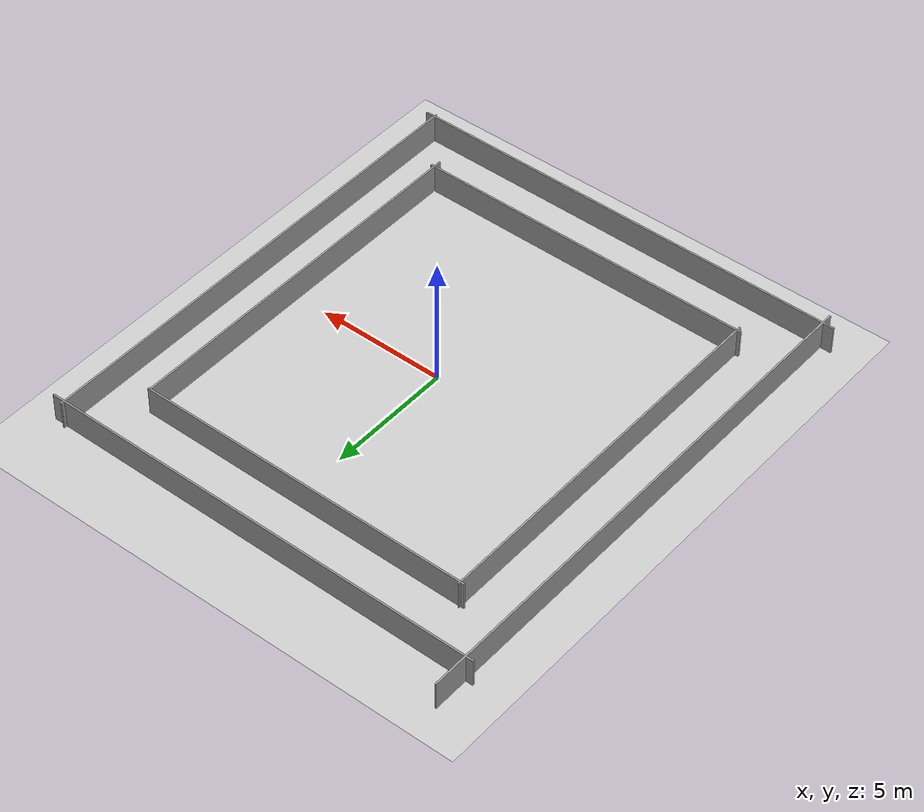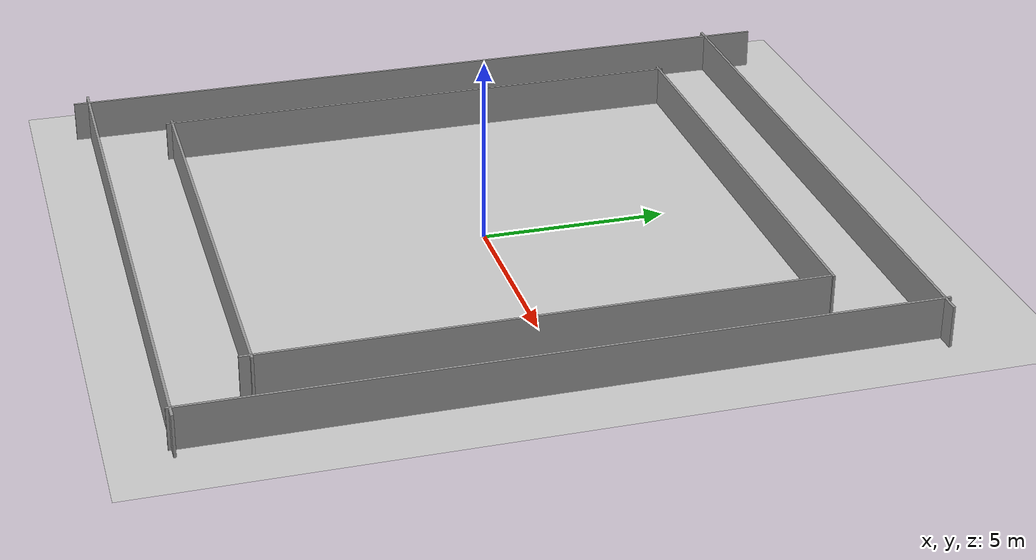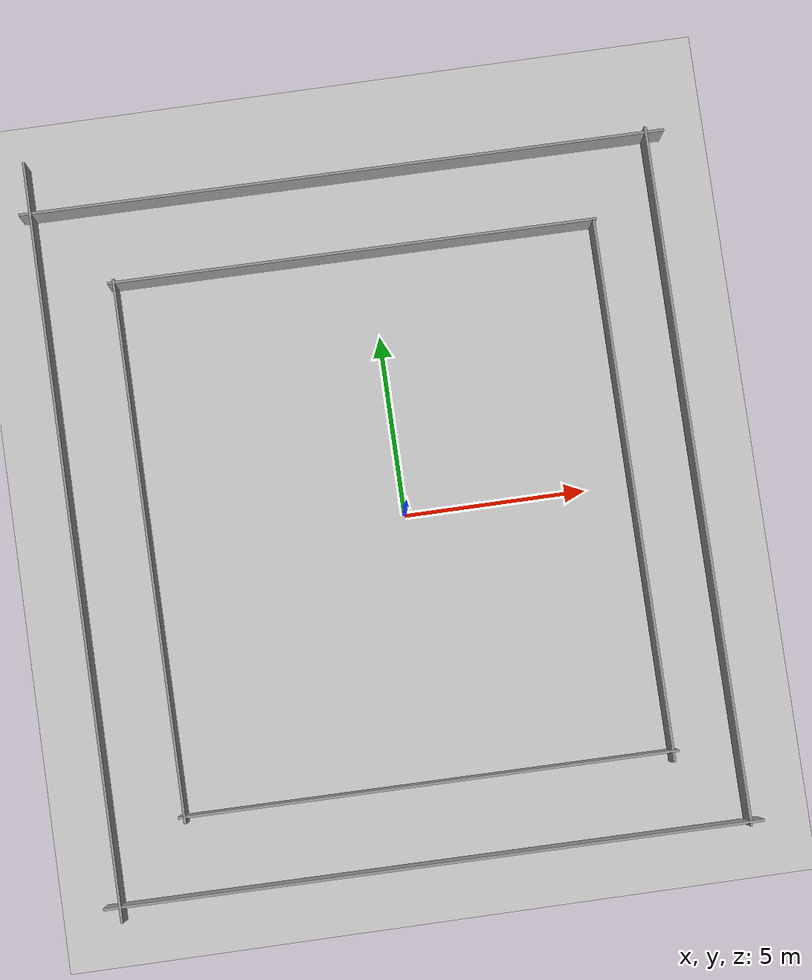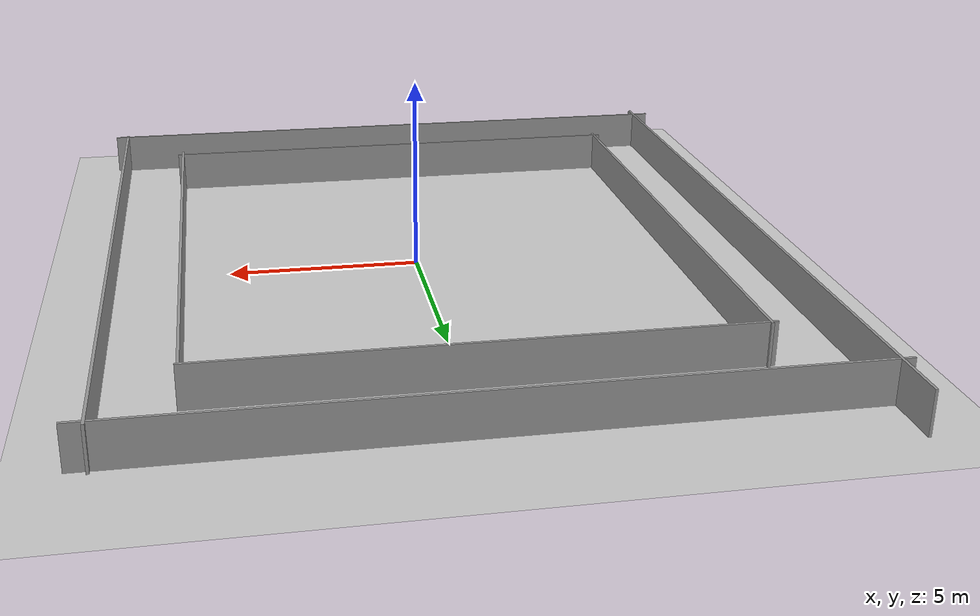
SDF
<sdf version="1.6">
 <world name="default">
  <light name="sun" type="directional">
   <pose>0 0 10 0 -0 0</pose>
   <diffuse>0.8 0.8 0.8 1</diffuse>
   <specular>0.1 0.1 0.1 1</specular>
   <attenuation>
    <range>1000</range>
    <constant>0.9</constant>
    <linear>0.01</linear>
    <quadratic>0.001</quadratic>
   </attenuation>
   <direction>-0.5 0.5 -1</direction>
  </light>
  <model name="ground_plane">
   <static>1</static>
   <link name="link">
    <collision name="collision">
     <geometry><plane><normal>0 0 1</normal><size>100 100</size></plane></geometry>
     <surface><friction><ode><mu>100</mu><mu2>50</mu2></ode></friction></surface>
    </collision>
    <visual name="visual">
     <cast_shadows>0</cast_shadows>
     <geometry><plane><normal>0 0 1</normal><size>100 100</size></plane></geometry>
     <material>
      <script><uri>file://media/materials/scripts/gazebo.material</uri><name>Gazebo/Grey</name></script>
     </material>
    </visual>
   </link>
  </model>
  <gravity>0 0 -9.8</gravity>
  <magnetic_field>6e-06 2.3e-05 -4.2e-05</magnetic_field>
  <atmosphere type="adiabatic"/>
  <physics name="default_physics" default="0" type="ode">
   <max_step_size>0.001</max_step_size>
   <real_time_factor>1</real_time_factor>
   <real_time_update_rate>1000</real_time_update_rate>
  </physics>
  <scene><ambient>0.4 0.4 0.4 1</ambient><background>0.7 0.7 0.7 1</background><shadows>1</shadows></scene>
  <spherical_coordinates>
   <surface_model>EARTH_WGS84</surface_model>
   <latitude_deg>0</latitude_deg>
   <longitude_deg>0</longitude_deg>
   <elevation>0</elevation>
   <heading_deg>0</heading_deg>
  </spherical_coordinates>
  <model name="Untitled">
   <link name="link_0">
    <pose>-8.62546 0.502256 0 0 -0 0</pose>
    <inertial>
     <mass>1.72372</mass>
     <inertia><ixx>62.4485</ixx><ixy>0</ixy><ixz>0</ixz><iyy>0.200224</iyy><iyz>0</iyz><izz>62.2497</izz></inertia>
    </inertial>
    <visual name="visual">
     <geometry><box><size>0.070213 20.8172 1.17853</size></box></geometry>
     <material>
      <lighting>1</lighting>
      <script><uri>file://media/materials/scripts/gazebo.material</uri><name>Gazebo/Grey</name></script>
      <ambient>0.3 0.3 0.3 1</ambient>
      <diffuse>0.7 0.7 0.7 1</diffuse>
      <specular>0.01 0.01 0.01 1</specular>
      <emissive>0 0 0 1</emissive>
     </material>
    </visual>
    <collision name="collision">
     <geometry><box><size>0.070213 20.8172 1.17853</size></box></geometry>
     <surface>
      <friction>
       <ode><mu>1</mu><mu2>1</mu2><fdir1>0 0 0</fdir1><slip1>0</slip1><slip2>0</slip2></ode>
       <torsional>
        <coefficient>1</coefficient>
        <patch_radius>0</patch_radius>
        <surface_radius>0</surface_radius>
        <use_patch_radius>1</use_patch_radius>
        <ode><slip>0</slip></ode>
       </torsional>
      </friction>
      <bounce><restitution_coefficient>0</restitution_coefficient><threshold>1e+06</threshold></bounce>
      <contact>
       <collide_without_contact>0</collide_without_contact>
       <collide_without_contact_bitmask>1</collide_without_contact_bitmask>
       <collide_bitmask>1</collide_bitmask>
       <ode>
        <soft_cfm>0</soft_cfm>
        <soft_erp>0.2</soft_erp>
        <kp>1e+13</kp>
        <kd>1</kd>
        <max_vel>0.01</max_vel>
        <min_depth>0</min_depth>
       </ode>
       <bullet>
        <split_impulse>1</split_impulse>
        <split_impulse_penetration_threshold>-0.01</split_impulse_penetration_threshold>
        <soft_cfm>0</soft_cfm>
        <soft_erp>0.2</soft_erp>
        <kp>1e+13</kp>
        <kd>1</kd>
       </bullet>
      </contact>
     </surface>
    </collision>
   </link>
   <link name="link_0_clone">
    <pose>-6.61056 -0.082572 0 0 -0 0</pose>
    <inertial>
     <mass>1.23331</mass>
     <inertia><ixx>22.9405</ixx><ixy>0</ixy><ixz>0</ixz><iyy>0.143255</iyy><iyz>0</iyz><izz>22.7983</izz></inertia>
    </inertial>
    <visual name="visual">
     <geometry><box><size>0.070213 14.8936 1.17852</size></box></geometry>
     <material>
      <lighting>1</lighting>
      <script><uri>file://media/materials/scripts/gazebo.material</uri><name>Gazebo/Grey</name></script>
      <ambient>0.3 0.3 0.3 1</ambient>
      <diffuse>0.7 0.7 0.7 1</diffuse>
      <specular>0.01 0.01 0.01 1</specular>
      <emissive>0 0 0 1</emissive>
      <shader type="pixel"/>
     </material>
    </visual>
    <collision name="collision">
     <geometry><box><size>0.070213 14.8936 1.17852</size></box></geometry>
     <surface>
      <friction>
       <ode><mu>1</mu><mu2>1</mu2><fdir1>0 0 0</fdir1><slip1>0</slip1><slip2>0</slip2></ode>
       <torsional>
        <coefficient>1</coefficient>
        <patch_radius>0</patch_radius>
        <surface_radius>0</surface_radius>
        <use_patch_radius>1</use_patch_radius>
        <ode><slip>0</slip></ode>
       </torsional>
      </friction>
      <bounce><restitution_coefficient>0</restitution_coefficient><threshold>1e+06</threshold></bounce>
      <contact>
       <collide_without_contact>0</collide_without_contact>
       <collide_without_contact_bitmask>1</collide_without_contact_bitmask>
       <collide_bitmask>1</collide_bitmask>
       <ode>
        <soft_cfm>0</soft_cfm>
        <soft_erp>0.2</soft_erp>
        <kp>1e+13</kp>
        <kd>1</kd>
        <max_vel>0.01</max_vel>
        <min_depth>0</min_depth>
       </ode>
       <bullet>
        <split_impulse>1</split_impulse>
        <split_impulse_penetration_threshold>-0.01</split_impulse_penetration_threshold>
        <soft_cfm>0</soft_cfm>
        <soft_erp>0.2</soft_erp>
        <kp>1e+13</kp>
        <kd>1</kd>
       </bullet>
      </contact>
     </surface>
    </collision>
   </link>
   <link name="link_0_clone_0">
    <pose>6.61201 -0.285461 0 0 -0 0</pose>
    <inertial>
     <mass>1.23331</mass>
     <inertia><ixx>22.9405</ixx><ixy>0</ixy><ixz>0</ixz><iyy>0.143255</iyy><iyz>0</iyz><izz>22.7983</izz></inertia>
    </inertial>
    <visual name="visual">
     <geometry><box><size>0.070213 14.8936 1.17852</size></box></geometry>
     <material>
      <lighting>1</lighting>
      <script><uri>file://media/materials/scripts/gazebo.material</uri><name>Gazebo/Grey</name></script>
      <ambient>0.3 0.3 0.3 1</ambient>
      <diffuse>0.7 0.7 0.7 1</diffuse>
      <specular>0.01 0.01 0.01 1</specular>
      <emissive>0 0 0 1</emissive>
      <shader type="pixel"/>
     </material>
    </visual>
    <collision name="collision">
     <geometry><box><size>0.070213 14.8936 1.17852</size></box></geometry>
     <surface>
      <friction>
       <ode><mu>1</mu><mu2>1</mu2><fdir1>0 0 0</fdir1><slip1>0</slip1><slip2>0</slip2></ode>
       <torsional>
        <coefficient>1</coefficient>
        <patch_radius>0</patch_radius>
        <surface_radius>0</surface_radius>
        <use_patch_radius>1</use_patch_radius>
        <ode><slip>0</slip></ode>
       </torsional>
      </friction>
      <bounce><restitution_coefficient>0</restitution_coefficient><threshold>1e+06</threshold></bounce>
      <contact>
       <collide_without_contact>0</collide_without_contact>
       <collide_without_contact_bitmask>1</collide_without_contact_bitmask>
       <collide_bitmask>1</collide_bitmask>
       <ode>
        <soft_cfm>0</soft_cfm>
        <soft_erp>0.2</soft_erp>
        <kp>1e+13</kp>
        <kd>1</kd>
        <max_vel>0.01</max_vel>
        <min_depth>0</min_depth>
       </ode>
       <bullet>
        <split_impulse>1</split_impulse>
        <split_impulse_penetration_threshold>-0.01</split_impulse_penetration_threshold>
        <soft_cfm>0</soft_cfm>
        <soft_erp>0.2</soft_erp>
        <kp>1e+13</kp>
        <kd>1</kd>
       </bullet>
      </contact>
     </surface>
    </collision>
   </link>
   <link name="link_0_clone_1">
    <pose>8.38944 -0.082572 0 0 -0 0</pose>
    <inertial>
     <mass>1.59132</mass>
     <inertia><ixx>49.1561</ixx><ixy>0</ixy><ixz>0</ixz><iyy>0.184839</iyy><iyz>0</iyz><izz>48.9726</izz></inertia>
    </inertial>
    <visual name="visual">
     <geometry><box><size>0.070213 19.217 1.17852</size></box></geometry>
     <material>
      <lighting>1</lighting>
      <script><uri>file://media/materials/scripts/gazebo.material</uri><name>Gazebo/Grey</name></script>
      <ambient>0.3 0.3 0.3 1</ambient>
      <diffuse>0.7 0.7 0.7 1</diffuse>
      <specular>0.01 0.01 0.01 1</specular>
      <emissive>0 0 0 1</emissive>
      <shader type="pixel"/>
     </material>
    </visual>
    <collision name="collision">
     <geometry><box><size>0.070213 19.217 1.17852</size></box></geometry>
     <surface>
      <friction>
       <ode><mu>1</mu><mu2>1</mu2><fdir1>0 0 0</fdir1><slip1>0</slip1><slip2>0</slip2></ode>
       <torsional>
        <coefficient>1</coefficient>
        <patch_radius>0</patch_radius>
        <surface_radius>0</surface_radius>
        <use_patch_radius>1</use_patch_radius>
        <ode><slip>0</slip></ode>
       </torsional>
      </friction>
      <bounce><restitution_coefficient>0</restitution_coefficient><threshold>1e+06</threshold></bounce>
      <contact>
       <collide_without_contact>0</collide_without_contact>
       <collide_without_contact_bitmask>1</collide_without_contact_bitmask>
       <collide_bitmask>1</collide_bitmask>
       <ode>
        <soft_cfm>0</soft_cfm>
        <soft_erp>0.2</soft_erp>
        <kp>1e+13</kp>
        <kd>1</kd>
        <max_vel>0.01</max_vel>
        <min_depth>0</min_depth>
       </ode>
       <bullet>
        <split_impulse>1</split_impulse>
        <split_impulse_penetration_threshold>-0.01</split_impulse_penetration_threshold>
        <soft_cfm>0</soft_cfm>
        <soft_erp>0.2</soft_erp>
        <kp>1e+13</kp>
        <kd>1</kd>
       </bullet>
      </contact>
     </surface>
    </collision>
   </link>
   <link name="link_0_clone_2">
    <pose>-0.161331 -9.52815 0 0 -0 1.56462</pose>
    <inertial>
     <mass>1.47568</mass>
     <inertia><ixx>39.2239</ixx><ixy>0</ixy><ixz>0</ixz><iyy>0.171408</iyy><iyz>0</iyz><izz>39.0538</izz></inertia>
    </inertial>
    <visual name="visual">
     <geometry><box><size>0.070213 17.8205 1.17852</size></box></geometry>
     <material>
      <lighting>1</lighting>
      <script><uri>file://media/materials/scripts/gazebo.material</uri><name>Gazebo/Grey</name></script>
      <ambient>0.3 0.3 0.3 1</ambient>
      <diffuse>0.7 0.7 0.7 1</diffuse>
      <specular>0.01 0.01 0.01 1</specular>
      <emissive>0 0 0 1</emissive>
      <shader type="pixel"/>
     </material>
    </visual>
    <collision name="collision">
     <geometry><box><size>0.070213 17.8205 1.17852</size></box></geometry>
     <surface>
      <friction>
       <ode><mu>1</mu><mu2>1</mu2><fdir1>0 0 0</fdir1><slip1>0</slip1><slip2>0</slip2></ode>
       <torsional>
        <coefficient>1</coefficient>
        <patch_radius>0</patch_radius>
        <surface_radius>0</surface_radius>
        <use_patch_radius>1</use_patch_radius>
        <ode><slip>0</slip></ode>
       </torsional>
      </friction>
      <bounce><restitution_coefficient>0</restitution_coefficient><threshold>1e+06</threshold></bounce>
      <contact>
       <collide_without_contact>0</collide_without_contact>
       <collide_without_contact_bitmask>1</collide_without_contact_bitmask>
       <collide_bitmask>1</collide_bitmask>
       <ode>
        <soft_cfm>0</soft_cfm>
        <soft_erp>0.2</soft_erp>
        <kp>1e+13</kp>
        <kd>1</kd>
        <max_vel>0.01</max_vel>
        <min_depth>0</min_depth>
       </ode>
       <bullet>
        <split_impulse>1</split_impulse>
        <split_impulse_penetration_threshold>-0.01</split_impulse_penetration_threshold>
        <soft_cfm>0</soft_cfm>
        <soft_erp>0.2</soft_erp>
        <kp>1e+13</kp>
        <kd>1</kd>
       </bullet>
      </contact>
     </surface>
    </collision>
   </link>
   <link name="link_0_clone_2_clone">
    <pose>-0.024357 9.42762 0 0 -0 1.56462</pose>
    <inertial>
     <mass>1.47568</mass>
     <inertia><ixx>39.2239</ixx><ixy>0</ixy><ixz>0</ixz><iyy>0.171408</iyy><iyz>0</iyz><izz>39.0538</izz></inertia>
    </inertial>
    <visual name="visual">
     <geometry><box><size>0.070213 17.8205 1.17852</size></box></geometry>
     <material>
      <lighting>1</lighting>
      <script><uri>file://media/materials/scripts/gazebo.material</uri><name>Gazebo/Grey</name></script>
      <ambient>0.3 0.3 0.3 1</ambient>
      <diffuse>0.7 0.7 0.7 1</diffuse>
      <specular>0.01 0.01 0.01 1</specular>
      <emissive>0 0 0 1</emissive>
      <shader type="pixel"/>
     </material>
    </visual>
    <collision name="collision">
     <geometry><box><size>0.070213 17.8205 1.17852</size></box></geometry>
     <surface>
      <friction>
       <ode><mu>1</mu><mu2>1</mu2><fdir1>0 0 0</fdir1><slip1>0</slip1><slip2>0</slip2></ode>
       <torsional>
        <coefficient>1</coefficient>
        <patch_radius>0</patch_radius>
        <surface_radius>0</surface_radius>
        <use_patch_radius>1</use_patch_radius>
        <ode><slip>0</slip></ode>
       </torsional>
      </friction>
      <bounce><restitution_coefficient>0</restitution_coefficient><threshold>1e+06</threshold></bounce>
      <contact>
       <collide_without_contact>0</collide_without_contact>
       <collide_without_contact_bitmask>1</collide_without_contact_bitmask>
       <collide_bitmask>1</collide_bitmask>
       <ode>
        <soft_cfm>0</soft_cfm>
        <soft_erp>0.2</soft_erp>
        <kp>1e+13</kp>
        <kd>1</kd>
        <max_vel>0.01</max_vel>
        <min_depth>0</min_depth>
       </ode>
       <bullet>
        <split_impulse>1</split_impulse>
        <split_impulse_penetration_threshold>-0.01</split_impulse_penetration_threshold>
        <soft_cfm>0</soft_cfm>
        <soft_erp>0.2</soft_erp>
        <kp>1e+13</kp>
        <kd>1</kd>
       </bullet>
      </contact>
     </surface>
    </collision>
   </link>
   <link name="link_0_clone_2_clone_clone">
    <pose>-0.04308 7.22909 0 0 -0 1.56462</pose>
    <inertial>
     <mass>1.11526</mass>
     <inertia><ixx>16.9871</ixx><ixy>0</ixy><ixz>0</ixz><iyy>0.129543</iyy><iyz>0</iyz><izz>16.8586</izz></inertia>
    </inertial>
    <visual name="visual">
     <geometry><box><size>0.070213 13.468 1.17852</size></box></geometry>
     <material>
      <lighting>1</lighting>
      <script><uri>file://media/materials/scripts/gazebo.material</uri><name>Gazebo/Grey</name></script>
      <ambient>0.3 0.3 0.3 1</ambient>
      <diffuse>0.7 0.7 0.7 1</diffuse>
      <specular>0.01 0.01 0.01 1</specular>
      <emissive>0 0 0 1</emissive>
      <shader type="pixel"/>
     </material>
    </visual>
    <collision name="collision">
     <geometry><box><size>0.070213 13.468 1.17852</size></box></geometry>
     <surface>
      <friction>
       <ode><mu>1</mu><mu2>1</mu2><fdir1>0 0 0</fdir1><slip1>0</slip1><slip2>0</slip2></ode>
       <torsional>
        <coefficient>1</coefficient>
        <patch_radius>0</patch_radius>
        <surface_radius>0</surface_radius>
        <use_patch_radius>1</use_patch_radius>
        <ode><slip>0</slip></ode>
       </torsional>
      </friction>
      <bounce><restitution_coefficient>0</restitution_coefficient><threshold>1e+06</threshold></bounce>
      <contact>
       <collide_without_contact>0</collide_without_contact>
       <collide_without_contact_bitmask>1</collide_without_contact_bitmask>
       <collide_bitmask>1</collide_bitmask>
       <ode>
        <soft_cfm>0</soft_cfm>
        <soft_erp>0.2</soft_erp>
        <kp>1e+13</kp>
        <kd>1</kd>
        <max_vel>0.01</max_vel>
        <min_depth>0</min_depth>
       </ode>
       <bullet>
        <split_impulse>1</split_impulse>
        <split_impulse_penetration_threshold>-0.01</split_impulse_penetration_threshold>
        <soft_cfm>0</soft_cfm>
        <soft_erp>0.2</soft_erp>
        <kp>1e+13</kp>
        <kd>1</kd>
       </bullet>
      </contact>
     </surface>
    </collision>
   </link>
   <link name="link_0_clone_2_clone_clone_clone">
    <pose>-0.009862 -7.3874 0 0 -0 1.56462</pose>
    <inertial>
     <mass>1.12047</mass>
     <inertia><ixx>17.2252</ixx><ixy>0</ixy><ixz>0</ixz><iyy>0.130148</iyy><iyz>0</iyz><izz>17.096</izz></inertia>
    </inertial>
    <visual name="visual">
     <geometry><box><size>0.070213 13.5309 1.17852</size></box></geometry>
     <material>
      <lighting>1</lighting>
      <script><uri>file://media/materials/scripts/gazebo.material</uri><name>Gazebo/Grey</name></script>
      <ambient>0.3 0.3 0.3 1</ambient>
      <diffuse>0.7 0.7 0.7 1</diffuse>
      <specular>0.01 0.01 0.01 1</specular>
      <emissive>0 0 0 1</emissive>
      <shader type="pixel"/>
     </material>
    </visual>
    <collision name="collision">
     <geometry><box><size>0.070213 13.5309 1.17852</size></box></geometry>
     <surface>
      <friction>
       <ode><mu>1</mu><mu2>1</mu2><fdir1>0 0 0</fdir1><slip1>0</slip1><slip2>0</slip2></ode>
       <torsional>
        <coefficient>1</coefficient>
        <patch_radius>0</patch_radius>
        <surface_radius>0</surface_radius>
        <use_patch_radius>1</use_patch_radius>
        <ode><slip>0</slip></ode>
       </torsional>
      </friction>
      <bounce><restitution_coefficient>0</restitution_coefficient><threshold>1e+06</threshold></bounce>
      <contact>
       <collide_without_contact>0</collide_without_contact>
       <collide_without_contact_bitmask>1</collide_without_contact_bitmask>
       <collide_bitmask>1</collide_bitmask>
       <ode>
        <soft_cfm>0</soft_cfm>
        <soft_erp>0.2</soft_erp>
        <kp>1e+13</kp>
        <kd>1</kd>
        <max_vel>0.01</max_vel>
        <min_depth>0</min_depth>
       </ode>
       <bullet>
        <split_impulse>1</split_impulse>
        <split_impulse_penetration_threshold>-0.01</split_impulse_penetration_threshold>
        <soft_cfm>0</soft_cfm>
        <soft_erp>0.2</soft_erp>
        <kp>1e+13</kp>
        <kd>1</kd>
       </bullet>
      </contact>
     </surface>
    </collision>
   </link>
   <static>0</static>
   <pose>-0.389444 0.082572 0.5 0 -0 0</pose>
  </model>
 </world>
</sdf>
